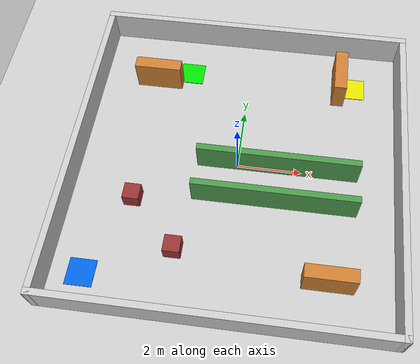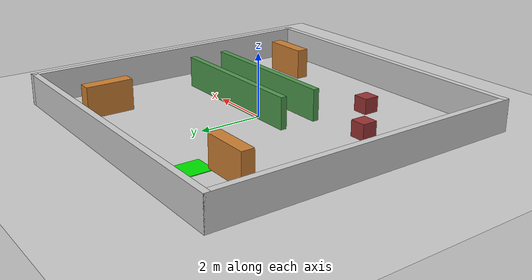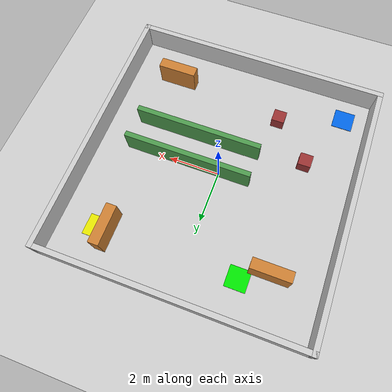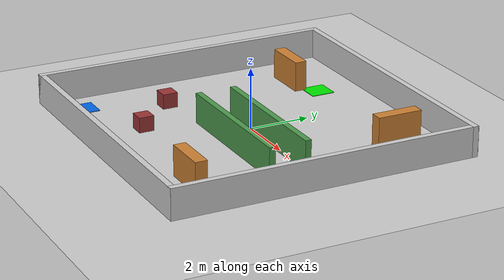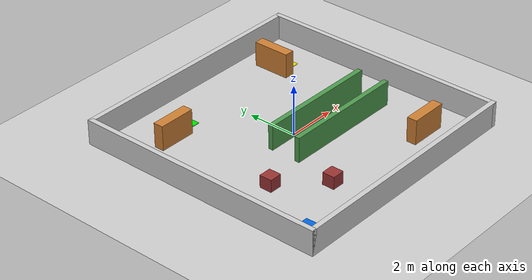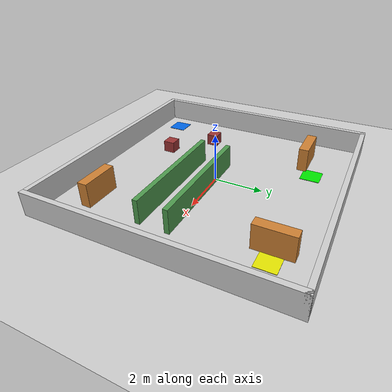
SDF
<?xml version="1.0"?>
<sdf version="1.6">
  <world name="warehouse">

    <!-- LIGHTING & GROUND -->
    <include><uri>model://ground_plane</uri></include>
    <include><uri>model://sun</uri></include>
    <ambient>0.4 0.4 0.4 1</ambient>
    <background>0.7 0.7 0.7 1</background>

    <!-- PHYSICS -->
    <physics type="ode">
      <real_time_update_rate>1000</real_time_update_rate>
      <max_step_size>0.001</max_step_size>
      <real_time_factor>1</real_time_factor>
    </physics>

    <!-- OUTER WALLS (10×10 m) -->
    <model name="wall_north">
      <static>true</static>
      <pose>0 5 0.5 0 0 0</pose>
      <link name="link">
        <collision name="col">
          <geometry><box><size>10.2 0.2 1.0</size></box></geometry>
        </collision>
        <visual name="vis">
          <geometry><box><size>10.2 0.2 1.0</size></box></geometry>
          <material><ambient>0.8 0.8 0.8 1</ambient></material>
        </visual>
      </link>
    </model>

    <model name="wall_south">
      <static>true</static>
      <pose>0 -5 0.5 0 0 0</pose>
      <link name="link">
        <collision name="col">
          <geometry><box><size>10.2 0.2 1.0</size></box></geometry>
        </collision>
        <visual name="vis">
          <geometry><box><size>10.2 0.2 1.0</size></box></geometry>
          <material><ambient>0.8 0.8 0.8 1</ambient></material>
        </visual>
      </link>
    </model>

    <model name="wall_east">
      <static>true</static>
      <pose>5 0 0.5 0 0 0</pose>
      <link name="link">
        <collision name="col">
          <geometry><box><size>0.2 10.2 1.0</size></box></geometry>
        </collision>
        <visual name="vis">
          <geometry><box><size>0.2 10.2 1.0</size></box></geometry>
          <material><ambient>0.8 0.8 0.8 1</ambient></material>
        </visual>
      </link>
    </model>

    <model name="wall_west">
      <static>true</static>
      <pose>-5 0 0.5 0 0 0</pose>
      <link name="link">
        <collision name="col">
          <geometry><box><size>0.2 10.2 1.0</size></box></geometry>
        </collision>
        <visual name="vis">
          <geometry><box><size>0.2 10.2 1.0</size></box></geometry>
          <material><ambient>0.8 0.8 0.8 1</ambient></material>
        </visual>
      </link>
    </model>

    <!-- NARROW CORRIDOR (centre divider with gap on left) -->
    <model name="corridor_wall_left">
      <static>true</static>
      <pose>1.25 0 0.5 0 0 0</pose>
      <link name="link">
        <collision name="col">
          <geometry><box><size>5.0 0.2 1.0</size></box></geometry>
        </collision>
        <visual name="vis">
          <geometry><box><size>5.0 0.2 1.0</size></box></geometry>
          <material><ambient>0.3 0.6 0.3 1</ambient></material>
        </visual>
      </link>
    </model>

    <model name="corridor_wall_right">
      <static>true</static>
      <pose>1.25 -1.2 0.5 0 0 0</pose>
      <link name="link">
        <collision name="col">
          <geometry><box><size>5.0 0.2 1.0</size></box></geometry>
        </collision>
        <visual name="vis">
          <geometry><box><size>5.0 0.2 1.0</size></box></geometry>
          <material><ambient>0.3 0.6 0.3 1</ambient></material>
        </visual>
      </link>
    </model>

    <!-- SHELVES -->
    <model name="shelf_A">
      <static>true</static>
      <pose>-3.0 3.0 0.5 0 0 0</pose>
      <link name="link">
        <collision name="col">
          <geometry><box><size>1.5 0.4 1.0</size></box></geometry>
        </collision>
        <visual name="vis">
          <geometry><box><size>1.5 0.4 1.0</size></box></geometry>
          <material><ambient>0.8 0.5 0.2 1</ambient></material>
        </visual>
      </link>
    </model>

    <model name="shelf_B">
      <static>true</static>
      <pose>3.0 3.5 0.5 0 0 0</pose>
      <link name="link">
        <collision name="col">
          <geometry><box><size>0.4 1.5 1.0</size></box></geometry>
        </collision>
        <visual name="vis">
          <geometry><box><size>0.4 1.5 1.0</size></box></geometry>
          <material><ambient>0.8 0.5 0.2 1</ambient></material>
        </visual>
      </link>
    </model>

    <model name="shelf_C">
      <static>true</static>
      <pose>3.0 -3.5 0.5 0 0 0</pose>
      <link name="link">
        <collision name="col">
          <geometry><box><size>1.5 0.4 1.0</size></box></geometry>
        </collision>
        <visual name="vis">
          <geometry><box><size>1.5 0.4 1.0</size></box></geometry>
          <material><ambient>0.8 0.5 0.2 1</ambient></material>
        </visual>
      </link>
    </model>

    <!-- BOX OBSTACLES -->
    <model name="box_1">
      <static>true</static>
      <pose>-1.5 -3.0 0.25 0 0 0</pose>
      <link name="link">
        <collision name="col">
          <geometry><box><size>0.5 0.5 0.5</size></box></geometry>
        </collision>
        <visual name="vis">
          <geometry><box><size>0.5 0.5 0.5</size></box></geometry>
          <material><ambient>0.6 0.2 0.2 1</ambient></material>
        </visual>
      </link>
    </model>

    <model name="box_2">
      <static>true</static>
      <pose>-3.0 -1.5 0.25 0 0 0</pose>
      <link name="link">
        <collision name="col">
          <geometry><box><size>0.5 0.5 0.5</size></box></geometry>
        </collision>
        <visual name="vis">
          <geometry><box><size>0.5 0.5 0.5</size></box></geometry>
          <material><ambient>0.6 0.2 0.2 1</ambient></material>
        </visual>
      </link>
    </model>

    <!-- ZONE MARKERS -->
    <model name="zone_pickup">
      <static>true</static>
      <pose>-2.0 3.5 -0.005 0 0 0</pose>
      <link name="link">
        <collision name="col">
          <geometry><box><size>0.8 0.8 0.02</size></box></geometry>
        </collision>
        <visual name="vis">
          <geometry><box><size>0.8 0.8 0.02</size></box></geometry>
          <material><ambient>0.0 0.9 0.0 1</ambient></material>
        </visual>
      </link>
    </model>

    <model name="zone_dropoff">
      <static>true</static>
      <pose>3.5 3.5 -0.005 0 0 0</pose>
      <link name="link">
        <collision name="col">
          <geometry><box><size>0.8 0.8 0.02</size></box></geometry>
        </collision>
        <visual name="vis">
          <geometry><box><size>0.8 0.8 0.02</size></box></geometry>
          <material><ambient>0.9 0.9 0.0 1</ambient></material>
        </visual>
      </link>
    </model>

    <model name="zone_dock">
      <static>true</static>
      <pose>-4.0 -4.0 -0.005 0 0 0</pose>
      <link name="link">
        <collision name="col">
          <geometry><box><size>0.8 0.8 0.02</size></box></geometry>
        </collision>
        <visual name="vis">
          <geometry><box><size>0.8 0.8 0.02</size></box></geometry>
          <material><ambient>0.0 0.4 0.9 1</ambient></material>
        </visual>
      </link>
    </model>

  </world>
</sdf>
